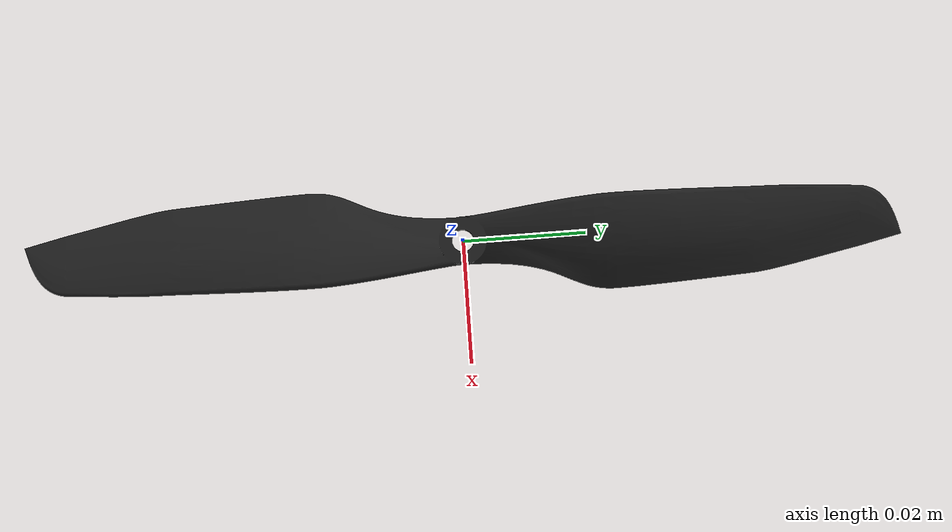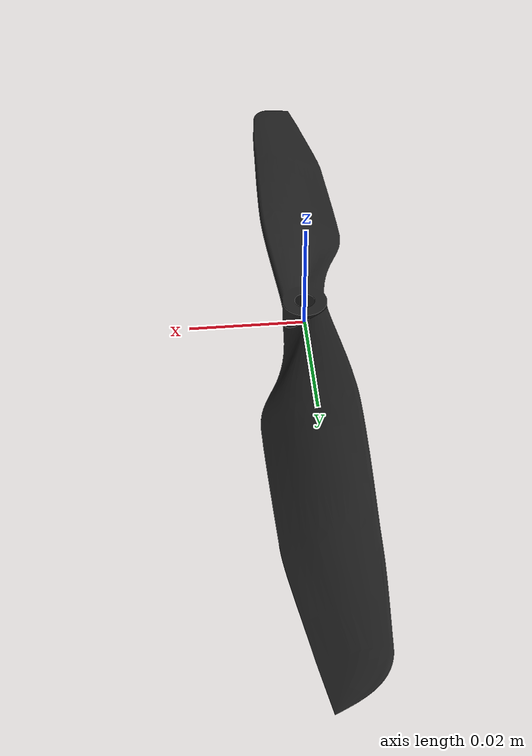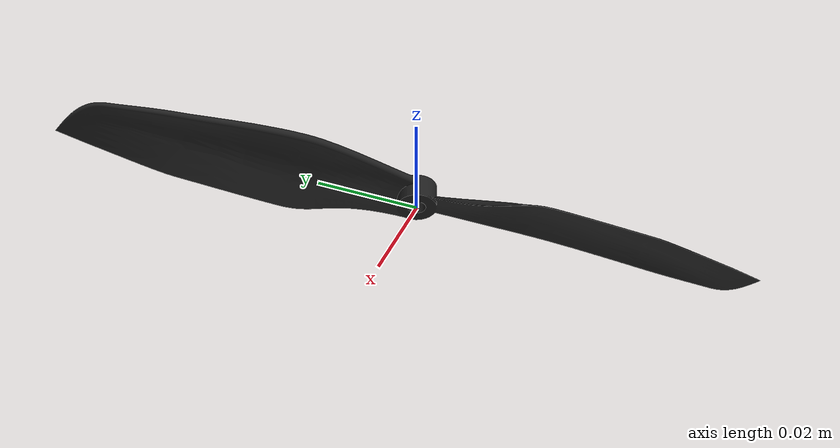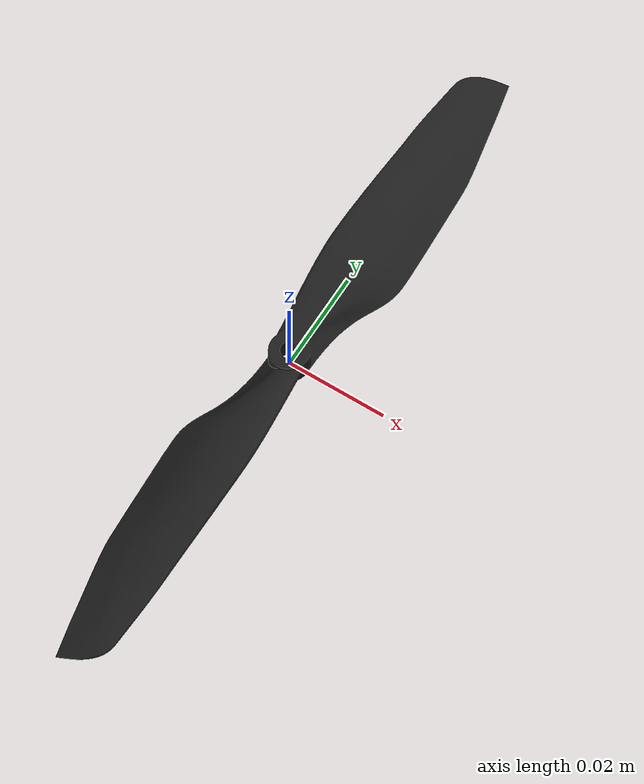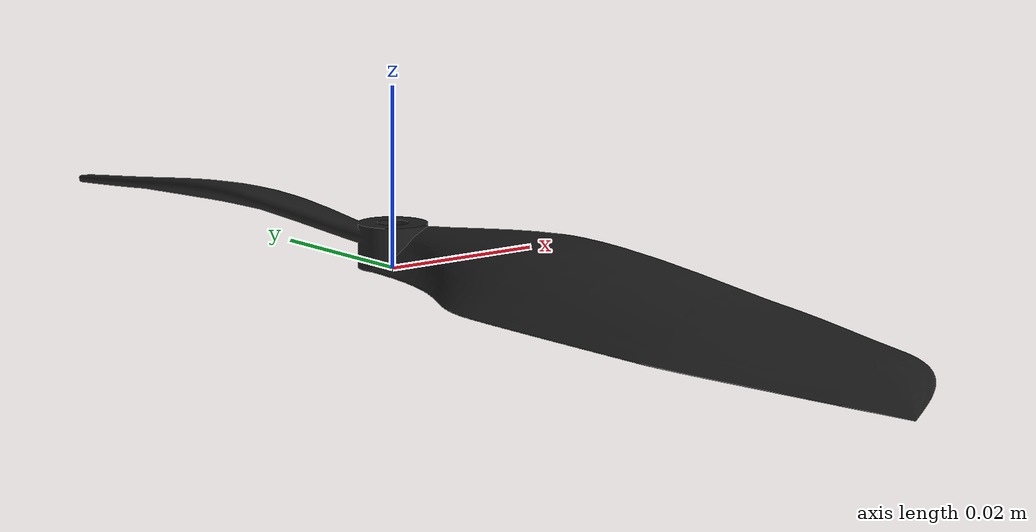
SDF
<sdf version='1.6'>
  <model name='modular_prop_sym'>
    <link name='rotor_0'>
      <pose frame=''>0 0 0 0 -0 0</pose>
      <inertial>
        <pose frame=''>0 0 0 0 -0 0</pose>
        <mass>0.005</mass>
        <inertia>
          <ixx>9.75e-07</ixx>
          <ixy>0</ixy>
          <ixz>0</ixz>
          <iyy>0.000273104</iyy>
          <iyz>0</iyz>
          <izz>0.000274004</izz>
        </inertia>
      </inertial>
      <collision name='rotor_0_collision'>
        <pose frame=''>0 0 0 0 -0 0</pose>
        <geometry>
          <cylinder>
            <length>0.009405</length>
            <radius>0.07112</radius>
          </cylinder>
        </geometry>
        <surface>
          <contact>
            <ode/>
          </contact>
          <friction>
            <ode/>
          </friction>
        </surface>
      </collision>
      <visual name='rotor_0_visual'>
        <pose frame=''>-0.048405 0.07112 0 1.570796 -0 0</pose>
        <geometry>
          <mesh>
            <scale>0.001 0.001 0.001</scale>
            <uri>model://modular_description/meshes/PROPELLER_SYM.STL</uri>
          </mesh>
        </geometry>
        <material>
          <script>
            <name>Gazebo/Black</name>
            <uri>file://media/materials/scripts/gazebo.material</uri>
          </script>
        </material>
      </visual>
      <gravity>1</gravity>
      <velocity_decay/>
    </link>
  </model>
</sdf>
